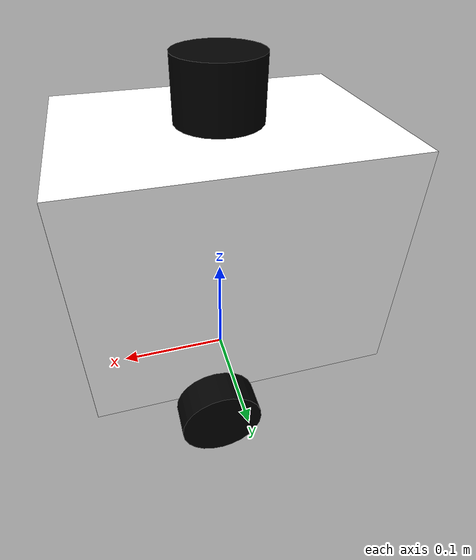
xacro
<?xml version="1.0"?>
<robot name="simple_robot" xmlns:xacro="http://ros.org/wiki/xacro">

  <xacro:include filename="$(find simple_robot_description)/urdf/simple_robot.gazebo.xacro"/>

  <xacro:property name="width" value="0.18" />
  <xacro:property name="length" value="0.25" />
  <xacro:property name="height" value="0.2" />
  <xacro:property name="caster_dia" value="0.02" />
  <xacro:property name="wheel_dia" value="0.064" />
  <xacro:property name="wheel_len" value="0.025" />
  <xacro:property name="wheel_separation" value="0.22" />
  <xacro:property name="lidar_h" value="0.05" />
  <xacro:property name="lidar_dia" value="0.07" />
  <xacro:property name="update_rate" value="30" />

  <material name="black">
    <color rgba="0 0 0 1"/>
  </material>

  <material name="white">
    <color rgba="1 1 1 1"/>
  </material>

  <material name="blue">
    <color rgba="0 0 1 1"/>
  </material>

  <!-- inertia -->
  <xacro:macro name="default_inertial" params="mass">
    <inertial>
      <mass value="${mass}" />
      <inertia ixx="${1*mass}" ixy="0.0" ixz="0.0" iyy="${1*mass}" iyz="0.0" izz="${1*mass}" />
    </inertial>
  </xacro:macro>

  <xacro:macro name="box_inertial" params="m x y z">
    <inertial>
      <mass value="${m}" />
      <inertia  ixx="${m*(y*y+z*z)/12}" ixy = "0" ixz = "0"
        iyy="${m*(x*x+z*z)/12}" iyz = "0"
        izz="${m*(x*x+z*z)/12}"
      />
    </inertial>
  </xacro:macro>

  <xacro:macro name="cylinder_inertia" params="m r h">
    <inertial>
      <mass value="${m}" />
      <inertia  ixx="${m*(3*r*r+h*h)/12}" ixy = "0" ixz = "0"
      iyy="${m*(3*r*r+h*h)/12}" iyz = "0"
      izz="${m*r*r/2}"
      />
    </inertial>
  </xacro:macro>

  <xacro:macro name="sphere_inertia" params="m r">
    <inertial>
      <mass value="${m}" />
      <inertia  ixx="${2*m*r*r/5}" ixy = "0" ixz = "0"
        iyy="${2*m*r*r/5}" iyz = "0"
        izz="${2*m*r*r/5}"
      />
    </inertial>
  </xacro:macro>

<!-- base_footprint -->
  <link name="base_footprint"/>

  <joint name="base_joint" type="fixed">
    <parent link="base_footprint"/>
    <child link="base_link"/>
    <origin xyz="0.0 0.0 0.010" rpy="0 0 0"/>
  </joint>

  <!-- base link -->
  <link name="base_link">
    <visual>
      <geometry>
        <box size="${length} ${width} ${height}"/>
      </geometry>
      <origin rpy="0 0 0" xyz="0 0 ${height/2+wheel_dia/2}"/>
      <material name="white"/>
    </visual>
    <collision>
      <geometry>
        <box size="${length} ${width} ${height}"/>
      </geometry>
      <origin rpy="0 0 0" xyz="0 0 ${height/2+wheel_dia/2}"/>
    </collision>
    <xacro:box_inertial m="10" x="${length}" y="${width}" z="${height}"/>
  </link>

  <!-- imu -->
  <link name="imu_link"/>

  <joint name="imu_joint" type="fixed">
    <parent link="base_link"/>
    <child link="imu_link"/>
    <origin rpy="0 0 0" xyz="0 0 ${wheel_dia/2+height/2}"/>
  </joint>

  <!-- lidar -->
  <link name="base_scan">
    <visual>
      <geometry>
        <cylinder length="${lidar_h}" radius="${lidar_dia/2}"/>
      </geometry>
      <origin rpy="0 0 0" xyz="0 0 0"/>
      <material name="black"/>
    </visual>
    <collision>
      <geometry>
        <cylinder length="${lidar_h}" radius="${lidar_dia/2}"/>
      </geometry>
      <origin rpy="0 0 0" xyz="0 0 0"/>
    </collision>
    <xacro:cylinder_inertia m=".3" r="${lidar_dia/2}" h="${lidar_h}"/>
  </link>
  <joint name="scan_joint" type="fixed">
    <parent link="base_link"/>
    <child link="base_scan"/>
    <origin rpy="0 0 0" xyz="0 0 ${wheel_dia/2+height+lidar_h/2}"/>
  </joint>
  <gazebo reference="base_scan">
    <material>Gazebo/Grey</material>
  </gazebo>

  <!-- caster wheel -->
  <link name="caster_wheel">
    <visual>
      <geometry>
        <sphere radius="${wheel_dia/2}"/>
      </geometry>
      <origin rpy="0 0 0" xyz="0 0 0"/>
      <material name="black"/>
    </visual>
    <collision>
      <geometry>
        <sphere radius="${wheel_dia/2}"/>
      </geometry>
      <origin rpy="0 0 0" xyz="0 0 0"/>
    </collision>
   <xacro:sphere_inertia m=".01" r="${wheel_dia/2}"/>
  </link>
  <joint name="base_to_caster_wheel" type="fixed">
    <parent link="base_link"/>
    <child link="caster_wheel"/>
    <origin rpy="0 0 0" xyz="-${length/2-caster_dia/2} 0 ${wheel_dia/2}"/>
  </joint>

<!-- wheel -->
  <xacro:macro name="wheel" params="prefix reflect">

    <link name="wheel_${prefix}_link">
      <visual>
        <geometry>
          <cylinder length="${wheel_len}" radius="${wheel_dia/2}"/>
        </geometry>
        <origin rpy="0 0 0" xyz="0 0 0"/>
        <material name="black"/>
      </visual>
      <collision>
        <geometry>
          <cylinder length="${wheel_len}" radius="${wheel_dia/2}"/>
        </geometry>
      </collision>
      <xacro:cylinder_inertia m=".3" r="${wheel_dia/2}" h="${wheel_len}"/>
    </link>
    <joint name="wheel_${prefix}_joint" type="continuous">
      <parent link="base_link"/>
      <child link="wheel_${prefix}_link"/>
      <axis xyz="0 0 -1"/>
      <origin rpy="1.5708 0 0" xyz="0.03 ${wheel_separation/2*reflect} ${wheel_dia/2}"/>
    </joint>

    <gazebo reference="wheel_${prefix}_link">
      <mu1>10.1</mu1>
      <mu2>10.1</mu2>
      <kp>500000.0</kp>
      <kd>10.0</kd>
      <minDepth>0.001</minDepth>
      <maxVel>0.1</maxVel>
      <fdir1>1 0 0</fdir1>
      <material>Gazebo/FlatBlack</material>
    </gazebo>

  </xacro:macro>

  <xacro:wheel prefix="right" reflect="-1"/>
  <xacro:wheel prefix="left" reflect="1"/>

</robot>
